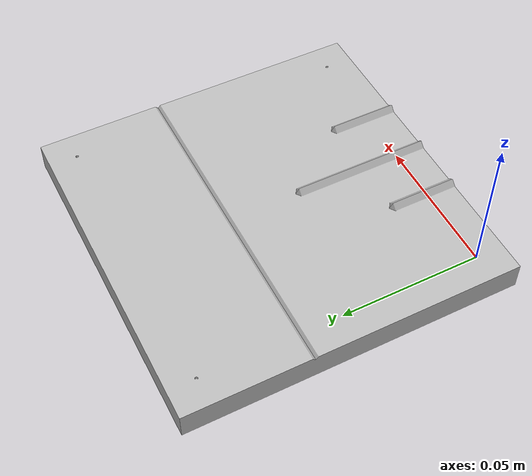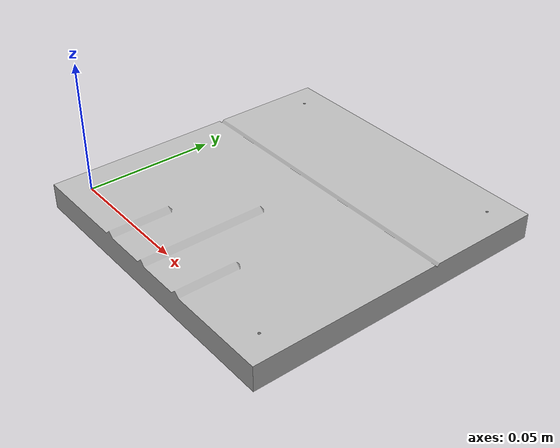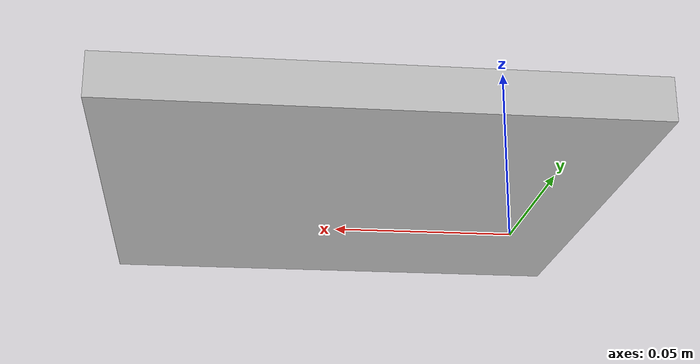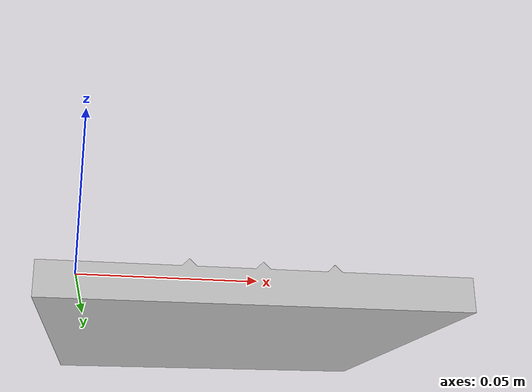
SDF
<?xml version="1.0"?>
<sdf version="1.6">
  <model name="calibration_plate">
    <pose>0 0 0 0 0 0</pose>
    <static>true</static>
    <link name="link">
      <inertial>
        <mass>1e-6</mass>
        <inertia> ixx="1e-6" iyy="1e-6" izz="1e-6" </inertia>
      </inertial>
      <collision name="collision">
        <geometry>
          <mesh>
            <uri>model://calibration_plate/meshes/calibration_plate.stl</uri>
          </mesh>
        </geometry>
      </collision>
      <visual name="visual">
        <geometry>
          <mesh>
            <uri>model://calibration_plate/meshes/calibration_plate.dae</uri>
          </mesh>
        </geometry>
        <material>Gazebo/DarkGrey</material>
      </visual>
    </link>
  </model>
</sdf>
